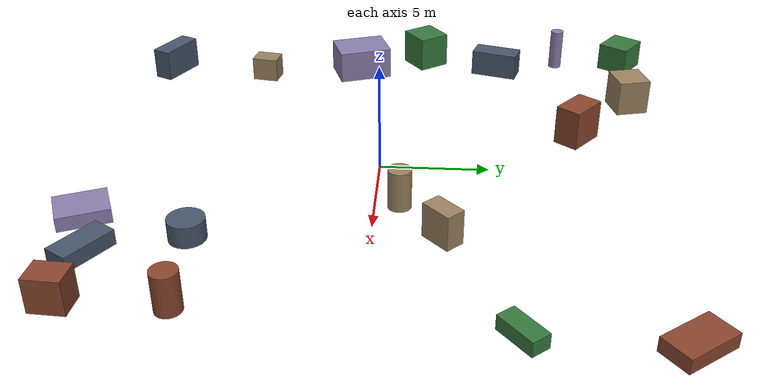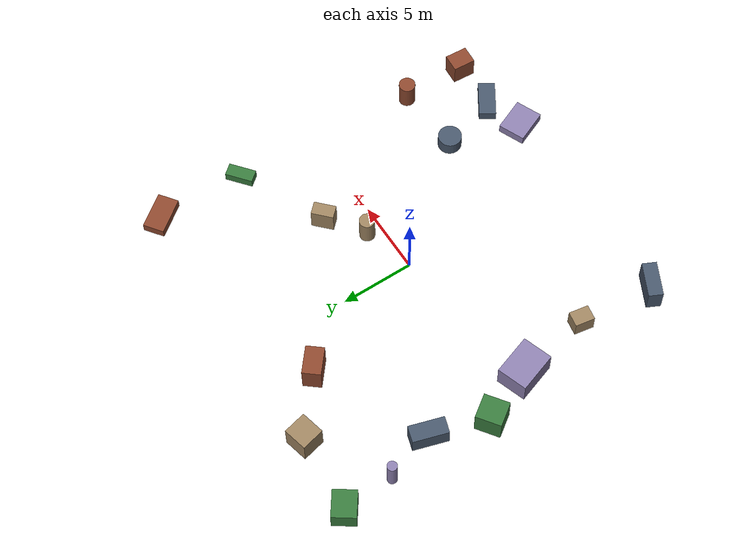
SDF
<sdf version="1.10">
 <world name="robotx_task1_uav_view">
  <gravity>0 0 -9.81</gravity>
  <physics name="physics" type="ode">
   <max_step_size>0.002</max_step_size>
   <real_time_factor>1.0</real_time_factor>
  </physics>
  <scene>
   <ambient>0.27 0.27 0.27 1.0</ambient>
   <background>0.62 0.75 0.92 1.0</background>
   <shadows>true</shadows>
   <grid>false</grid>
  </scene>
  <light name="sun" type="directional">
   <pose>0 0 300 0 0 0</pose>
   <diffuse>1.00 0.98 0.94 1.0</diffuse>
   <specular>1.00 1.00 1.00 1.0</specular>
   <direction>0.26 -0.12 -1.0</direction>
   <attenuation>
    <range>2500</range>
    <constant>0.85</constant>
    <linear>0.001</linear>
    <quadratic>0.00005</quadratic>
   </attenuation>
  </light>
  <plugin filename="gz-sim-physics-system" name="gz::sim::systems::Physics"/>
  <plugin filename="gz-sim-user-commands-system" name="gz::sim::systems::UserCommands"/>
  <plugin filename="gz-sim-scene-broadcaster-system" name="gz::sim::systems::SceneBroadcaster"/>
  <plugin filename="gz-sim-sensors-system" name="gz::sim::systems::Sensors">
   <render_engine>ogre2</render_engine>
  </plugin>
  <model name="scene_clutter_box_000">
   <static>true</static>
   <pose>-6.932 12.336 0.889 0 0 0.229896</pose>
   <link name="link">
    <visual name="v">
     <geometry><box><size>1.645 1.586 1.738</size></box></geometry>
     <material><ambient>0.45 0.38 0.32 1.0</ambient><diffuse>0.62 0.52 0.38 1.0</diffuse></material>
    </visual>
   </link>
  </model>
  <model name="scene_clutter_box_001">
   <static>true</static>
   <pose>-10.895 5.754 0.685 0 0 -1.866864</pose>
   <link name="link">
    <visual name="v">
     <geometry><box><size>2.408 1.129 1.329</size></box></geometry>
     <material><ambient>0.18 0.22 0.28 1.0</ambient><diffuse>0.28 0.34 0.42 1.0</diffuse></material>
    </visual>
   </link>
  </model>
  <model name="scene_clutter_box_002">
   <static>true</static>
   <pose>-3.227 9.336 0.967 0 0 -0.690801</pose>
   <link name="link">
    <visual name="v">
     <geometry><box><size>1.909 1.239 1.894</size></box></geometry>
     <material><ambient>0.35 0.16 0.12 1.0</ambient><diffuse>0.55 0.28 0.18 1.0</diffuse></material>
    </visual>
   </link>
  </model>
  <model name="scene_clutter_box_003">
   <static>true</static>
   <pose>-12.140 1.829 0.914 0 0 2.192869</pose>
   <link name="link">
    <visual name="v">
     <geometry><box><size>1.681 1.746 1.789</size></box></geometry>
     <material><ambient>0.12 0.30 0.14 1.0</ambient><diffuse>0.22 0.48 0.24 1.0</diffuse></material>
    </visual>
   </link>
  </model>
  <model name="scene_clutter_box_004">
   <static>true</static>
   <pose>-10.562 -1.705 0.830 0 0 1.900773</pose>
   <link name="link">
    <visual name="v">
     <geometry><box><size>2.777 2.090 1.621</size></box></geometry>
     <material><ambient>0.40 0.35 0.50 1.0</ambient><diffuse>0.55 0.50 0.68 1.0</diffuse></material>
    </visual>
   </link>
  </model>
  <model name="scene_clutter_box_005">
   <static>true</static>
   <pose>-9.651 -6.816 0.626 0 0 2.974137</pose>
   <link name="link">
    <visual name="v">
     <geometry><box><size>1.027 1.334 1.213</size></box></geometry>
     <material><ambient>0.45 0.38 0.32 1.0</ambient><diffuse>0.62 0.52 0.38 1.0</diffuse></material>
    </visual>
   </link>
  </model>
  <model name="scene_clutter_box_006">
   <static>true</static>
   <pose>7.625 -11.364 0.372 0 0 1.005865</pose>
   <link name="link">
    <visual name="v">
     <geometry><box><size>1.152 2.474 0.704</size></box></geometry>
     <material><ambient>0.18 0.22 0.28 1.0</ambient><diffuse>0.28 0.34 0.42 1.0</diffuse></material>
    </visual>
   </link>
  </model>
  <model name="scene_clutter_box_007">
   <static>true</static>
   <pose>11.980 11.781 0.343 0 0 -2.503448</pose>
   <link name="link">
    <visual name="v">
     <geometry><box><size>1.444 2.510 0.645</size></box></geometry>
     <material><ambient>0.35 0.16 0.12 1.0</ambient><diffuse>0.55 0.28 0.18 1.0</diffuse></material>
    </visual>
   </link>
  </model>
  <model name="scene_clutter_box_008">
   <static>true</static>
   <pose>11.768 5.768 0.346 0 0 -2.458437</pose>
   <link name="link">
    <visual name="v">
     <geometry><box><size>1.881 0.861 0.652</size></box></geometry>
     <material><ambient>0.12 0.30 0.14 1.0</ambient><diffuse>0.22 0.48 0.24 1.0</diffuse></material>
    </visual>
   </link>
  </model>
  <model name="scene_clutter_cyl_009">
   <static>true</static>
   <pose>-11.977 9.137 1.096 0 0 2.627733</pose>
   <link name="link">
    <visual name="v">
     <geometry><cylinder><radius>0.336</radius><length>2.093</length></cylinder></geometry>
     <material><ambient>0.40 0.35 0.50 1.0</ambient><diffuse>0.55 0.50 0.68 1.0</diffuse></material>
    </visual>
   </link>
  </model>
  <model name="scene_clutter_cyl_010">
   <static>true</static>
   <pose>3.426 1.067 0.969 0 0 -1.390560</pose>
   <link name="link">
    <visual name="v">
     <geometry><cylinder><radius>0.523</radius><length>1.838</length></cylinder></geometry>
     <material><ambient>0.45 0.38 0.32 1.0</ambient><diffuse>0.62 0.52 0.38 1.0</diffuse></material>
    </visual>
   </link>
  </model>
  <model name="scene_clutter_box_011">
   <static>true</static>
   <pose>-10.129 -12.028 0.818 0 0 -2.024259</pose>
   <link name="link">
    <visual name="v">
     <geometry><box><size>0.980 2.379 1.596</size></box></geometry>
     <material><ambient>0.18 0.22 0.28 1.0</ambient><diffuse>0.28 0.34 0.42 1.0</diffuse></material>
    </visual>
   </link>
  </model>
  <model name="scene_clutter_cyl_012">
   <static>true</static>
   <pose>10.941 -7.006 0.929 0 0 2.885558</pose>
   <link name="link">
    <visual name="v">
     <geometry><cylinder><radius>0.555</radius><length>1.759</length></cylinder></geometry>
     <material><ambient>0.35 0.16 0.12 1.0</ambient><diffuse>0.55 0.28 0.18 1.0</diffuse></material>
    </visual>
   </link>
  </model>
  <model name="scene_clutter_box_013">
   <static>true</static>
   <pose>-12.190 12.730 0.730 0 0 2.528565</pose>
   <link name="link">
    <visual name="v">
     <geometry><box><size>1.833 1.599 1.420</size></box></geometry>
     <material><ambient>0.12 0.30 0.14 1.0</ambient><diffuse>0.22 0.48 0.24 1.0</diffuse></material>
    </visual>
   </link>
  </model>
  <model name="scene_clutter_box_014">
   <static>true</static>
   <pose>4.943 -12.255 0.349 0 0 0.407460</pose>
   <link name="link">
    <visual name="v">
     <geometry><box><size>1.857 2.295 0.657</size></box></geometry>
     <material><ambient>0.40 0.35 0.50 1.0</ambient><diffuse>0.55 0.50 0.68 1.0</diffuse></material>
    </visual>
   </link>
  </model>
  <model name="scene_clutter_box_015">
   <static>true</static>
   <pose>5.808 2.921 0.812 0 0 0.761434</pose>
   <link name="link">
    <visual name="v">
     <geometry><box><size>1.509 0.892 1.584</size></box></geometry>
     <material><ambient>0.45 0.38 0.32 1.0</ambient><diffuse>0.62 0.52 0.38 1.0</diffuse></material>
    </visual>
   </link>
  </model>
  <model name="scene_clutter_cyl_016">
   <static>true</static>
   <pose>6.333 -7.434 0.534 0 0 1.298377</pose>
   <link name="link">
    <visual name="v">
     <geometry><cylinder><radius>0.801</radius><length>0.967</length></cylinder></geometry>
     <material><ambient>0.18 0.22 0.28 1.0</ambient><diffuse>0.28 0.34 0.42 1.0</diffuse></material>
    </visual>
   </link>
  </model>
  <model name="scene_clutter_box_017">
   <static>true</static>
   <pose>10.886 -11.324 0.783 0 0 3.075131</pose>
   <link name="link">
    <visual name="v">
     <geometry><box><size>1.217 1.520 1.525</size></box></geometry>
     <material><ambient>0.35 0.16 0.12 1.0</ambient><diffuse>0.55 0.28 0.18 1.0</diffuse></material>
    </visual>
   </link>
  </model>
  <model name="uav_dataset_camera">
   <static>false</static>
   <pose>0 0 26 0 0 0</pose>
   <plugin filename="librobotx_overhead_motion_plugin.dylib" name="robotx::OverheadMotionPlugin">
    <radius_x_m>9.55007</radius_x_m>
    <radius_y_m>11.32582</radius_y_m>
    <angular_speed_rad_s>0.052828</angular_speed_rad_s>
    <phase_rad>2.898480</phase_rad>
    <z_wobble_m>0.03183</z_wobble_m>
    <z_wobble_hz>0.06608</z_wobble_hz>
    <z_wobble_phase_rad>1.514495</z_wobble_phase_rad>
   </plugin>
   <link name="camera_link">
    <gravity>false</gravity>
    <sensor name="top_down_rgb" type="camera">
     <always_on>true</always_on>
     <update_rate>20</update_rate>
     <pose>0 0 0 0 1.57079632679 0</pose>
     <camera>
      <horizontal_fov>1.05</horizontal_fov>
      <image><width>1920</width><height>1080</height><format>R8G8B8</format></image>
      <clip><near>0.2</near><far>600</far></clip>
     </camera>
     <topic>/robotx/uav/camera/image_raw</topic>
     <visualize>true</visualize>
    </sensor>
   </link>
  </model>
 </world>
</sdf>
